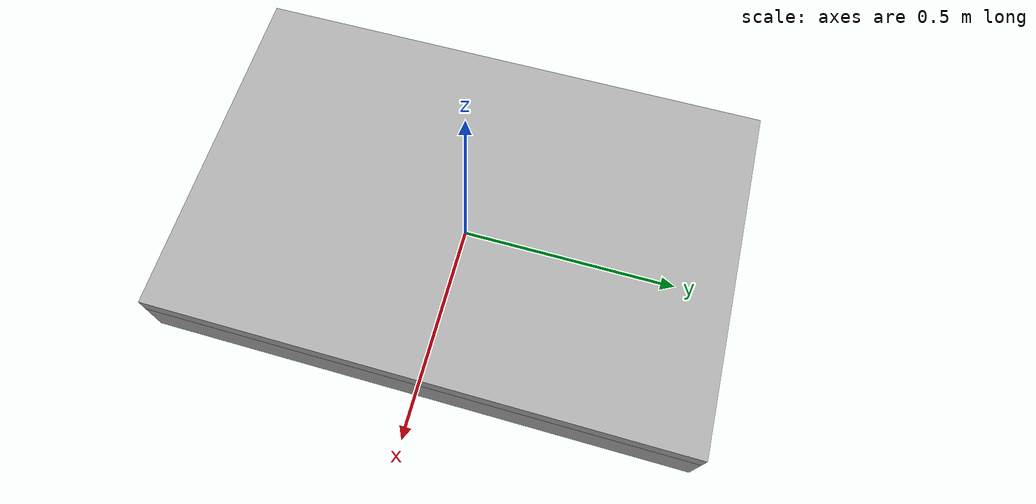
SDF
<?xml version='1.0'?>
<sdf version='1.6'>
  <model name='epal_pallet'>
    <link name='base_link'>
      <pose frame=''>0 0 0 0 -0 0</pose>
      <inertial>
        <pose frame=''>0 0 0.095 0 -0 0</pose>
        <mass>8</mass>
        <inertia>
          <ixx>0.973027</ixx>
          <ixy>0</ixy>
          <ixz>0</ixz>
          <iyy>1.48389</iyy>
          <iyz>0</iyz>
          <izz>0.517473</izz>
        </inertia>
      </inertial>
      <self_collide>0</self_collide>
      <enable_wind>0</enable_wind>
      <kinematic>0</kinematic>
      <visual name='base_link_fixed_joint_lump__central_foot_link_visual'>
        <pose frame=''>0 0 0.05 0 -0 0</pose>
        <geometry>
          <box>
            <size>0.1 1.2 0.1</size>
          </box>
        </geometry>
        <material>
          <shader type='pixel'/>
        </material>
        <transparency>0</transparency>
        <cast_shadows>1</cast_shadows>
      </visual>
      <visual name='base_link_fixed_joint_lump__cover_link_visual_1'>
        <pose frame=''>0 0 0.122 0 -0 0</pose>
        <geometry>
          <box>
            <size>0.8 1.2 0.044</size>
          </box>
        </geometry>
        <material>
          <shader type='pixel'/>
        </material>
        <transparency>0</transparency>
        <cast_shadows>1</cast_shadows>
      </visual>
      <visual name='base_link_fixed_joint_lump__left_foot_link_visual_2'>
        <pose frame=''>-0.35 0 0.05 0 -0 0</pose>
        <geometry>
          <box>
            <size>0.1 1.2 0.1</size>
          </box>
        </geometry>
        <material>
          <shader type='pixel'/>
        </material>
        <transparency>0</transparency>
        <cast_shadows>1</cast_shadows>
      </visual>
      <visual name='base_link_fixed_joint_lump__right_foot_link_visual_3'>
        <pose frame=''>0.35 0 0.05 0 -0 0</pose>
        <geometry>
          <box>
            <size>0.1 1.2 0.1</size>
          </box>
        </geometry>
        <material>
          <shader type='pixel'/>
        </material>
        <transparency>0</transparency>
        <cast_shadows>1</cast_shadows>
      </visual>
      <collision name='base_link_fixed_joint_lump__central_foot_link_collision'>
        <laser_retro>0</laser_retro>
        <max_contacts>10</max_contacts>
        <pose frame=''>0 0 0.05 0 -0 0</pose>
        <geometry>
          <box>
            <size>0.1 1.2 0.1</size>
          </box>
        </geometry>
        <surface>
          <friction>
            <ode>
              <mu>1</mu>
              <mu2>1</mu2>
              <fdir1>0 0 0</fdir1>
              <slip1>0</slip1>
              <slip2>0</slip2>
            </ode>
            <torsional>
              <coefficient>1</coefficient>
              <patch_radius>0</patch_radius>
              <surface_radius>0</surface_radius>
              <use_patch_radius>1</use_patch_radius>
              <ode>
                <slip>0</slip>
              </ode>
            </torsional>
          </friction>
          <bounce>
            <restitution_coefficient>0</restitution_coefficient>
            <threshold>1e+06</threshold>
          </bounce>
          <contact>
            <collide_without_contact>0</collide_without_contact>
            <collide_without_contact_bitmask>1</collide_without_contact_bitmask>
            <collide_bitmask>1</collide_bitmask>
            <ode>
              <soft_cfm>0</soft_cfm>
              <soft_erp>0.2</soft_erp>
              <kp>1e+13</kp>
              <kd>1</kd>
              <max_vel>0.01</max_vel>
              <min_depth>0</min_depth>
            </ode>
            <bullet>
              <split_impulse>1</split_impulse>
              <split_impulse_penetration_threshold>-0.01</split_impulse_penetration_threshold>
              <soft_cfm>0</soft_cfm>
              <soft_erp>0.2</soft_erp>
              <kp>1e+13</kp>
              <kd>1</kd>
            </bullet>
          </contact>
        </surface>
      </collision>
      <collision name='base_link_fixed_joint_lump__cover_link_collision_1'>
        <laser_retro>0</laser_retro>
        <max_contacts>10</max_contacts>
        <pose frame=''>0 0 0.122 0 -0 0</pose>
        <geometry>
          <box>
            <size>0.8 1.2 0.044</size>
          </box>
        </geometry>
        <surface>
          <friction>
            <ode>
              <mu>1</mu>
              <mu2>1</mu2>
              <fdir1>0 0 0</fdir1>
              <slip1>0</slip1>
              <slip2>0</slip2>
            </ode>
            <torsional>
              <coefficient>1</coefficient>
              <patch_radius>0</patch_radius>
              <surface_radius>0</surface_radius>
              <use_patch_radius>1</use_patch_radius>
              <ode>
                <slip>0</slip>
              </ode>
            </torsional>
          </friction>
          <bounce>
            <restitution_coefficient>0</restitution_coefficient>
            <threshold>1e+06</threshold>
          </bounce>
          <contact>
            <collide_without_contact>0</collide_without_contact>
            <collide_without_contact_bitmask>1</collide_without_contact_bitmask>
            <collide_bitmask>1</collide_bitmask>
            <ode>
              <soft_cfm>0</soft_cfm>
              <soft_erp>0.2</soft_erp>
              <kp>1e+13</kp>
              <kd>1</kd>
              <max_vel>0.01</max_vel>
              <min_depth>0</min_depth>
            </ode>
            <bullet>
              <split_impulse>1</split_impulse>
              <split_impulse_penetration_threshold>-0.01</split_impulse_penetration_threshold>
              <soft_cfm>0</soft_cfm>
              <soft_erp>0.2</soft_erp>
              <kp>1e+13</kp>
              <kd>1</kd>
            </bullet>
          </contact>
        </surface>
      </collision>
      <collision name='base_link_fixed_joint_lump__right_foot_link_collision_3'>
        <laser_retro>0</laser_retro>
        <max_contacts>10</max_contacts>
        <pose frame=''>0.35 0 0.05 0 -0 0</pose>
        <geometry>
          <box>
            <size>0.1 1.2 0.1</size>
          </box>
        </geometry>
        <surface>
          <friction>
            <ode>
              <mu>1</mu>
              <mu2>1</mu2>
              <fdir1>0 0 0</fdir1>
              <slip1>0</slip1>
              <slip2>0</slip2>
            </ode>
            <torsional>
              <coefficient>1</coefficient>
              <patch_radius>0</patch_radius>
              <surface_radius>0</surface_radius>
              <use_patch_radius>1</use_patch_radius>
              <ode>
                <slip>0</slip>
              </ode>
            </torsional>
          </friction>
          <bounce>
            <restitution_coefficient>0</restitution_coefficient>
            <threshold>1e+06</threshold>
          </bounce>
          <contact>
            <collide_without_contact>0</collide_without_contact>
            <collide_without_contact_bitmask>1</collide_without_contact_bitmask>
            <collide_bitmask>1</collide_bitmask>
            <ode>
              <soft_cfm>0</soft_cfm>
              <soft_erp>0.2</soft_erp>
              <kp>1e+13</kp>
              <kd>1</kd>
              <max_vel>0.01</max_vel>
              <min_depth>0</min_depth>
            </ode>
            <bullet>
              <split_impulse>1</split_impulse>
              <split_impulse_penetration_threshold>-0.01</split_impulse_penetration_threshold>
              <soft_cfm>0</soft_cfm>
              <soft_erp>0.2</soft_erp>
              <kp>1e+13</kp>
              <kd>1</kd>
            </bullet>
          </contact>
        </surface>
      </collision>
      <collision name='base_link_fixed_joint_lump__left_foot_link_collision_2'>
        <laser_retro>0</laser_retro>
        <max_contacts>10</max_contacts>
        <pose frame=''>-0.35 0 0.05 0 -0 0</pose>
        <geometry>
          <box>
            <size>0.1 1.2 0.1</size>
          </box>
        </geometry>
        <surface>
          <friction>
            <ode>
              <mu>1</mu>
              <mu2>1</mu2>
              <fdir1>0 0 0</fdir1>
              <slip1>0</slip1>
              <slip2>0</slip2>
            </ode>
            <torsional>
              <coefficient>1</coefficient>
              <patch_radius>0</patch_radius>
              <surface_radius>0</surface_radius>
              <use_patch_radius>1</use_patch_radius>
              <ode>
                <slip>0</slip>
              </ode>
            </torsional>
          </friction>
          <bounce>
            <restitution_coefficient>0</restitution_coefficient>
            <threshold>1e+06</threshold>
          </bounce>
          <contact>
            <collide_without_contact>0</collide_without_contact>
            <collide_without_contact_bitmask>1</collide_without_contact_bitmask>
            <collide_bitmask>1</collide_bitmask>
            <ode>
              <soft_cfm>0</soft_cfm>
              <soft_erp>0.2</soft_erp>
              <kp>1e+13</kp>
              <kd>1</kd>
              <max_vel>0.01</max_vel>
              <min_depth>0</min_depth>
            </ode>
            <bullet>
              <split_impulse>1</split_impulse>
              <split_impulse_penetration_threshold>-0.01</split_impulse_penetration_threshold>
              <soft_cfm>0</soft_cfm>
              <soft_erp>0.2</soft_erp>
              <kp>1e+13</kp>
              <kd>1</kd>
            </bullet>
          </contact>
        </surface>
      </collision>
    </link>
    <static>0</static>
    <allow_auto_disable>1</allow_auto_disable>
  </model>
</sdf>
